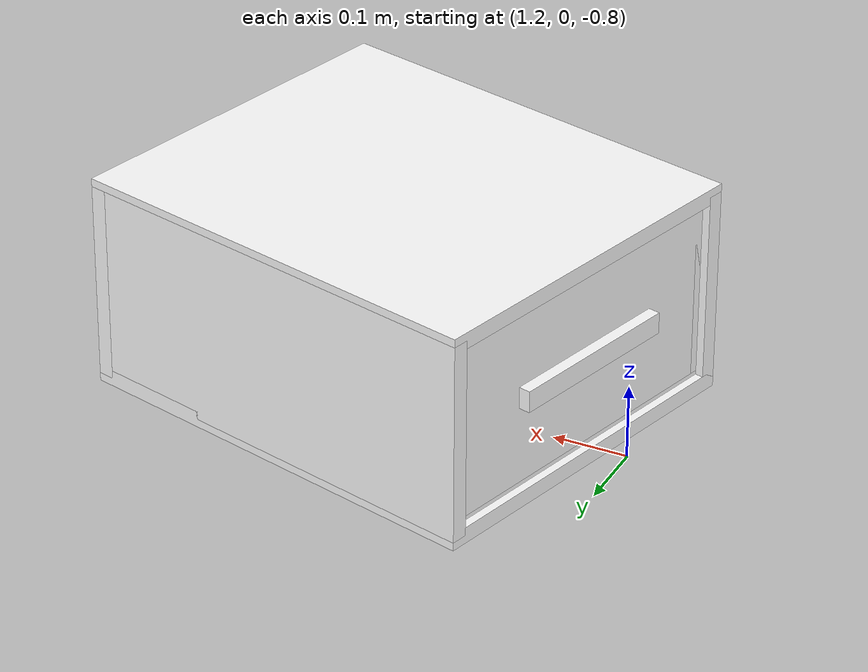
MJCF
<mujoco model="drawer">
        <compiler angle="radian" eulerseq='zxy' />
        <option gravity = "0 0 0" />
        <option>
            <flag contact = "disable"/>
        </option>
        <statistic	extent="1.0" center="0.0 0.0 0.0"/>
        <visual>
            <map fogstart="3" fogend="5" force="0.1" znear=" 0.100000 " zfar=" 12.000000 "/>
        </visual>
        <size njmax="500" nconmax="100" />
        <actuator>
            <velocity joint="drawerJ" name="viva_revolution" kv='10'></velocity>
        </actuator>
        <asset>
            <texture builtin="flat" name="objtex" height="32" width="32" rgb1="1 1 1" type="cube"></texture>
            <texture builtin="flat" name="handletex" height="32" width="32" rgb1="1 1 1" type="cube"></texture>
            <material name="geomObj" shininess="0.03" specular="0.75" texture="objtex"></material>
            <material name="geomHandle" shininess="0.03" specular="0.75" texture="handletex"></material>
        </asset>
        <worldbody>
            <body name="cabinet_bottom" pos= " 1.505630 -0.004781 -0.767752 "  quat= " 0.130042 0.000000 0.000000 0.991508" >
                <inertial pos="0 0 0" mass="1" diaginertia="1 1 1" />
                <geom size= " 0.293218 0.249456 0.010872 "  type="box" material="geomObj" name="b"/>
                <body name="cabinet_left" pos= " 0.000000 -0.238584 0.132825 " >
                    <inertial pos="0 0 0" mass="1" diaginertia="1 1 1" />
                    <geom size= " 0.293218 0.010872 0.132825 "  type="box" material="geomObj" name="c" />
                </body>
                <body name="cabinet_right" pos= " 0.000000 0.238584 0.132825 " >
                    <inertial pos="0 0 0" mass="1" diaginertia="1 1 1" />
                    <geom size= " 0.293218 0.010872 0.132825 "  type="box" material="geomObj" name="d" />
                </body>
                <body name="cabinet_top" pos= " 0.000000 0.000000 0.265650 " >
                    <inertial pos="0 0 0" mass="1" diaginertia="1 1 1" />
                    <geom size= " 0.293218 0.249456 0.010872 "  type="box" material="geomObj" name="e"/>
                </body>
                <body name="cabinet_back" pos= " -0.282347 0.000000 0.132825 "  >
                    <inertial pos="0 0 0" mass="1" diaginertia="1 1 1" />
                    <geom size= " 0.010872 0.249456 0.132825 "  type="box" material="geomObj" name="f" />
                </body>
                <body name="drawer" pos= " 0.000000 0.000000 0.005436 "  >
                    <geom size= " 0.282347 0.238584 0.010872 "  type="box" material="geomObj" name="ddddfadfadsfac" />
                    <joint name="drawerJ" pos="0 0 0" axis="1 0 0" type="slide" limited="true" range= "0  0.43982774019241333 "  />
                    <inertial pos="0 0 0" mass="1" diaginertia="1 1 1" />
                    <body name="drawer_left" pos= " 0.000000 -0.227713 0.132825 " >
                        <inertial pos="0 0 0" mass="1" diaginertia="1 1 1" />
                        <geom size= " 0.282347 0.010872 0.121954 "  type="box" material="geomObj" name="ddc" />
                    </body>
                    <body name="drawer_right" pos= " 0.000000 0.227713 0.132825 " >
                        <inertial pos="0 0 0" mass="1" diaginertia="1 1 1" />
                        <geom size= " 0.282347 0.010872 0.121954 "  type="box" material="geomObj" name="dddd" />
                    </body>
                    <body name="drawer_front" pos= " 0.271475 0.000000 0.132825 " >
                        <inertial pos="0 0 0" mass="1" diaginertia="1 1 1" />
                        <geom size= " 0.010872 0.238584 0.121954 "  type="box" material="geomObj" name="eeeee"/>
                    </body>
                    <body name="drawer_back" pos= " -0.282347 0.000000 0.132825 "  >
                        <inertial pos="0 0 0" mass="1" diaginertia="1 1 1" />
                        <geom size= " 0.010872 0.238584 0.121954 "  type="box" material="geomObj" name="fffff" />
                    </body>
                    <body name="knob" pos= " 0.293218 0.000000 0.132825 " >
                        <inertial pos="0 0 0" mass="0.1" diaginertia="0.1 0.1 0.1" />
                        <geom size= " 0.007854 0.122871 0.014349 "  pos="0 0 0" type="box" material="geomHandle" name="handle"/>
                    </body>
                </body>
            </body>
            <body name="external_camera_body_0" pos="0.0 0 0.00">
                <camera euler="-1.57 1.57 0.0" fovy=" 54.280851 " name="external_camera_0" pos="0.0 0 0"></camera>
                <inertial pos= " 0.00 0.0 0.000000 " mass="1" diaginertia="1 1 1" />
                <joint name="cam_j" pos="0.0 0 0" axis = "1 0 0" type="free" />
            </body>
        </worldbody>
    </mujoco>
